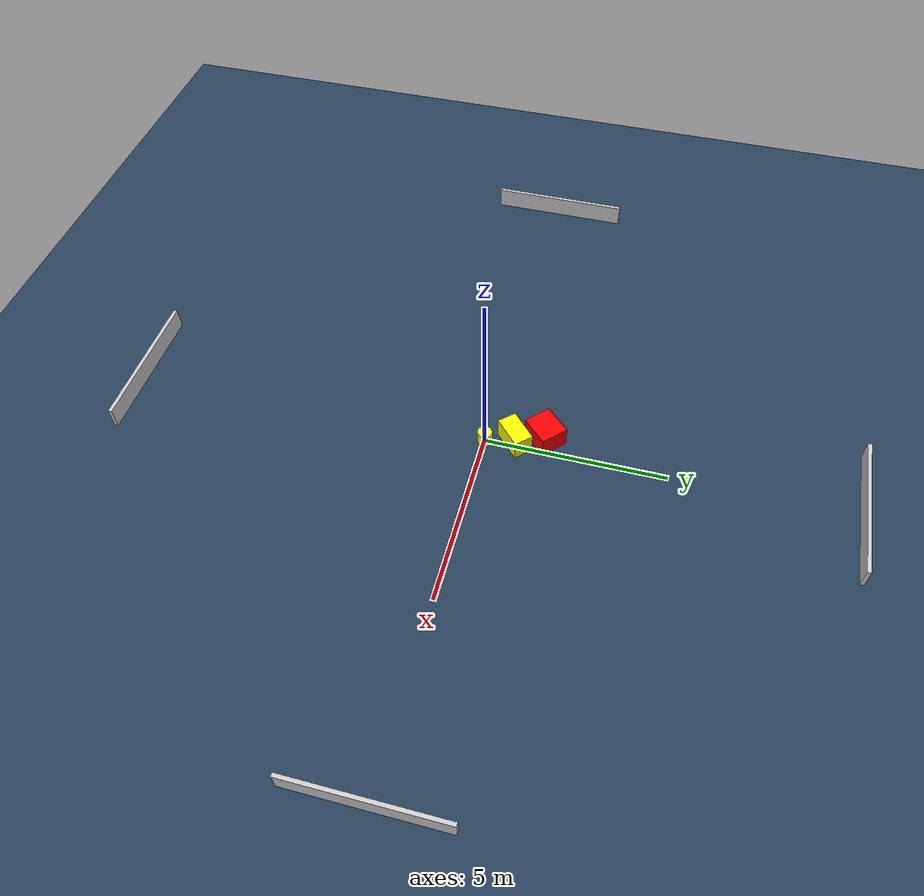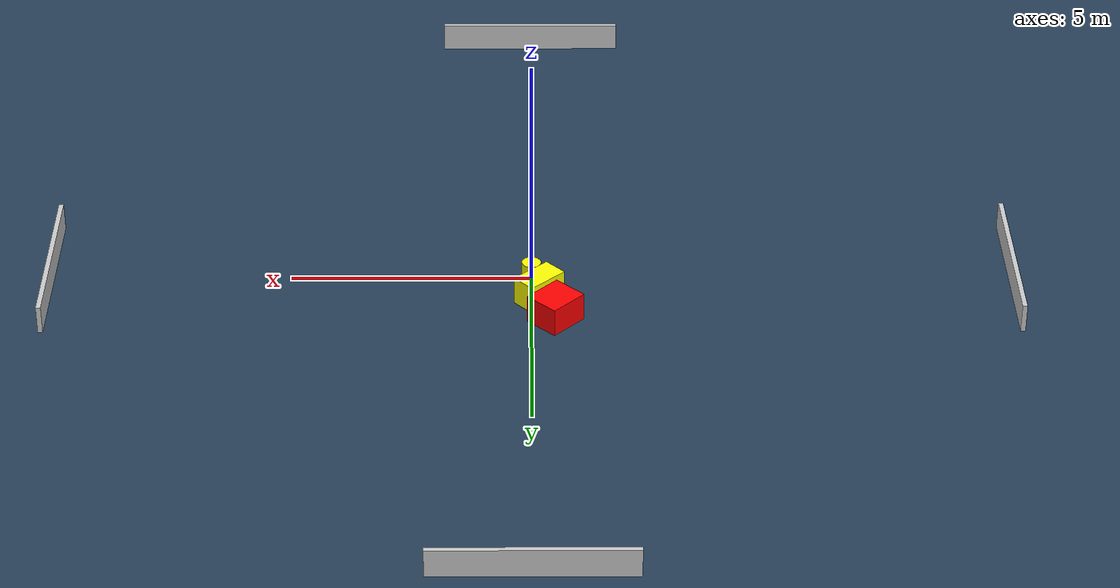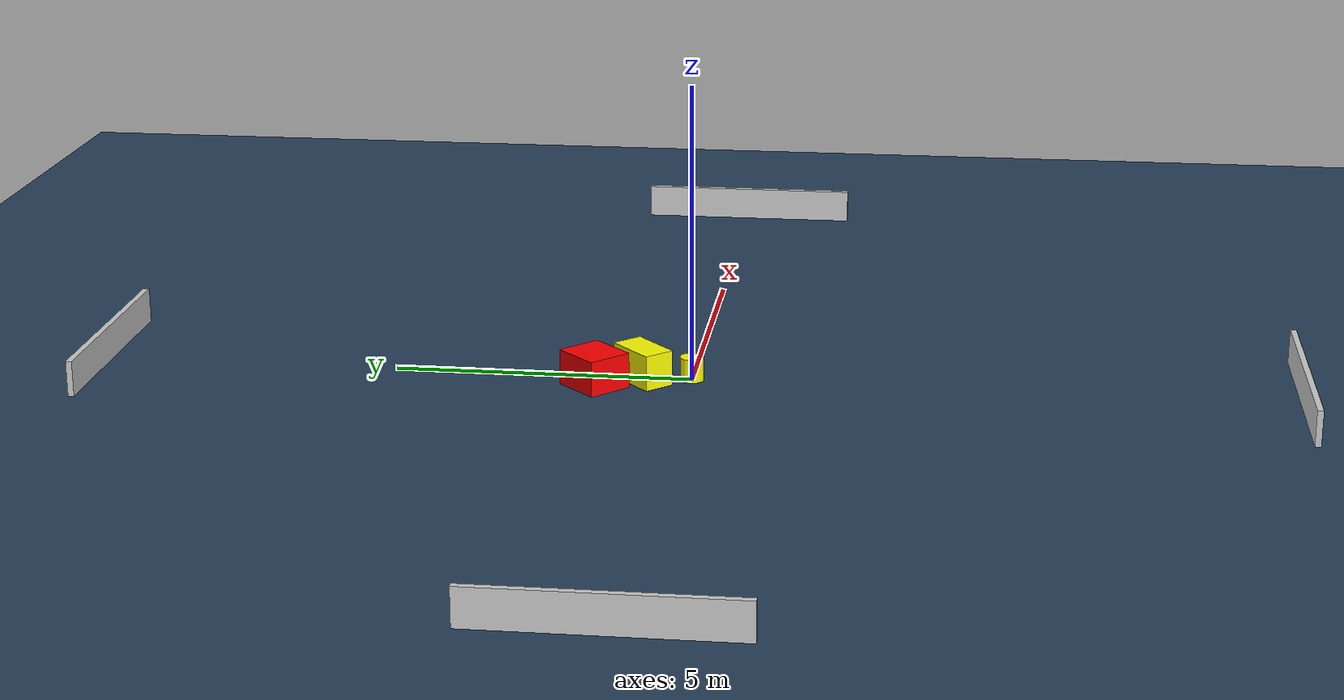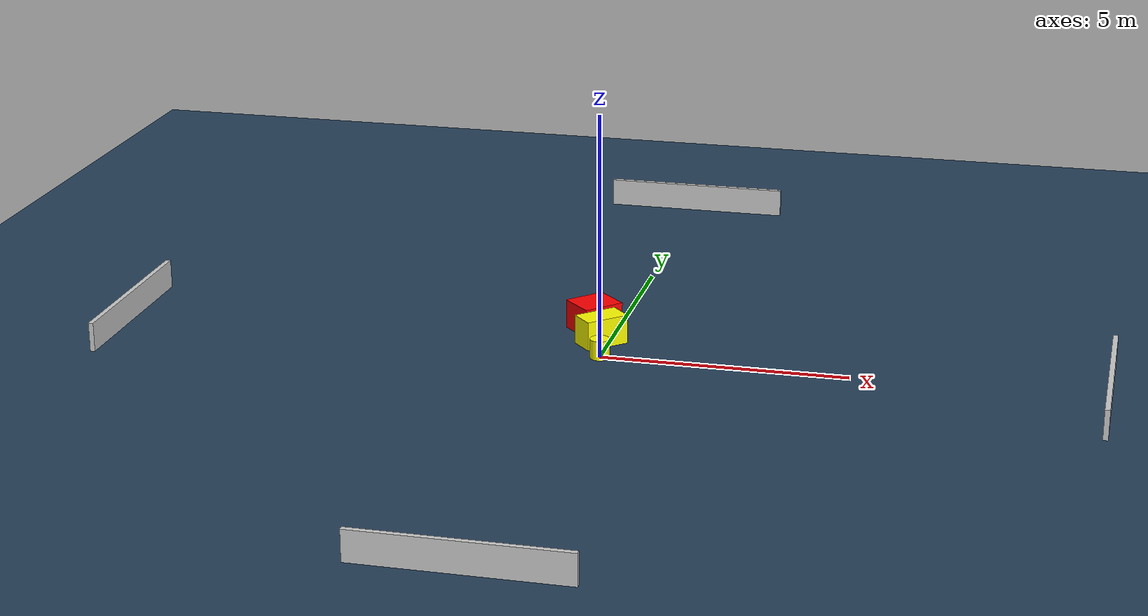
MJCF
<?xml version="1.0" ?>
<mujoco model="generated_environment">
  <option timestep="0.01" integrator="RK4" cone="elliptic"/>
  <default>
    <geom density="1"/>
  </default>
  <asset>
    <texture builtin="gradient" height="3072" name="skybox" rgb1="0.3 0.5 0.7" rgb2="0 0 0" type="skybox" width="512"/>
    <texture builtin="checker" height="300" name="groundplane" rgb1="0.2 0.3 0.4" rgb2="0.1 0.2 0.3" type="2d" width="300"/>
    <material name="groundplane" reflectance="0.2" texrepeat="5 5" texture="groundplane"/>
  </asset>
  <worldbody>
    <light dir="0 0 -1" directional="true" pos="0 0 1.5"/>
    <geom condim="3" friction="0.5 0.005 0.001" material="groundplane" name="floor" pos="0 0 0" size="0 0 0.05" type="plane"/>
    <body name="walls">
      <geom name="wall_1" condim="4" pos="-10.0 0.0 0.3" rgba="0.800000011920929 0.800000011920929 0.800000011920929 1.0" size="0.05 2.0 0.3" type="box"/>
      <geom name="wall_2" condim="4" pos="10.0 0.0 0.3" rgba="0.800000011920929 0.800000011920929 0.800000011920929 1.0" size="0.05 2.0 0.3" type="box"/>
      <geom name="wall_3" condim="4" pos="0.0 -10.0 0.3" rgba="0.800000011920929 0.800000011920929 0.800000011920929 1.0" size="2.0 0.05 0.3" type="box"/>
      <geom name="wall_4" condim="4" pos="0.0 10.0 0.3" rgba="0.800000011920929 0.800000011920929 0.800000011920929 1.0" size="2.0 0.05 0.3" type="box"/>
    </body>
    <body name="robot">
      <joint name="joint_x" type="slide" pos="0 0 0" axis="1 0 0"/>
      <joint name="joint_y" type="slide" pos="0 0 0" axis="0 1 0"/>
      <geom name="robot" type="cylinder" pos="0.0 0.0 0.2" size="0.2 0.2 0.0" mass="5.0" friction="1.0 0.005 0.0001" condim="4" rgba="1.0 1.0 0.0 1.0"/>
    </body>
    <body name="obstacle_1_movable">
      <geom name="obstacle_1_movable" condim="4" pos="-0.15810769783227002 0.7993697999307899 0.3" euler="0 0 223.0714776768776" friction="0.0 0.005 0.001" rgba="1.0 1.0 0.0 1.0" size="0.4610156584941261 0.26745090544925404 0.3" type="box" mass="0.1"/>
      <joint type="free"/>
    </body>
    <body name="obstacle_2_static">
      <geom name="obstacle_2_static" condim="4" pos="-0.48804079667581707 1.5687090046055867 0.3" euler="0 0 225.71494075640558" friction="0.0 0.005 0.001" rgba="1.0 0.0 0.0 1.0" size="0.4346319771571038 0.38717906219584963 0.3" type="box"/>
    </body>
  </worldbody>
  <actuator>
    <motor name="actuator_x" joint="joint_x" gear="1" ctrlrange="-1 1"/>
    <motor name="actuator_y" joint="joint_y" gear="1" ctrlrange="-1 1"/>
  </actuator>
</mujoco>
